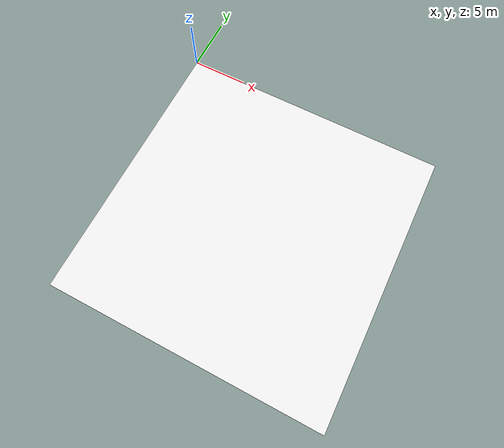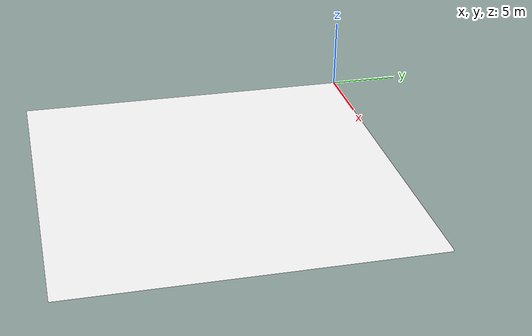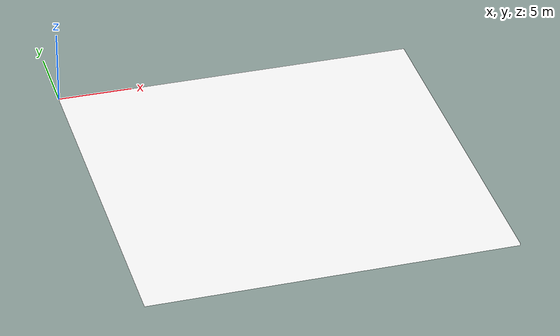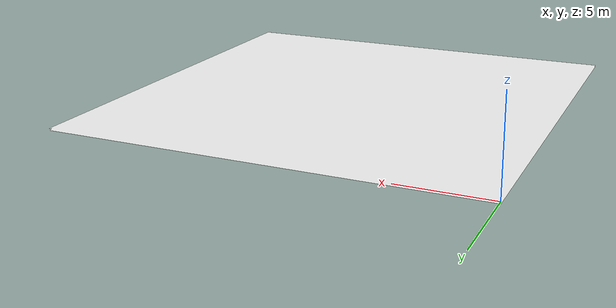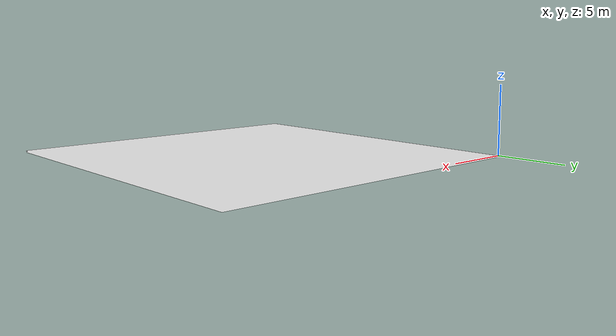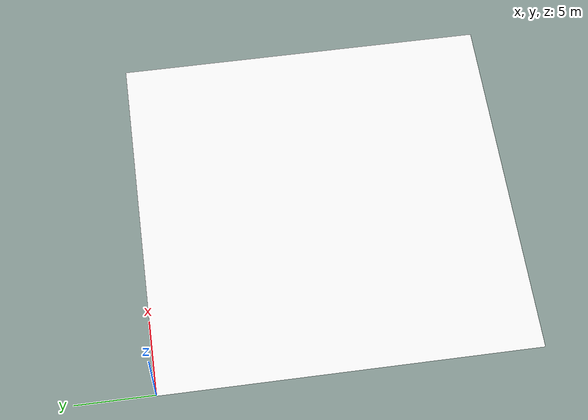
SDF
<?xml version='1.0' encoding='utf-8'?>
<sdf version="1.7">
  <model name="robotproj_L1">
    <static>true</static>
    <link name="floor_1">
      <visual name="visual">
        <geometry>
          <mesh>
            <uri>model://robotproj_L1/meshes/floor_1.obj</uri>
          </mesh>
        </geometry>
        <material>
          <diffuse>1.0 1.0 1.0</diffuse>
          <specular>0.1 0.1 0.1</specular>
          <pbr>
            <metal>
              <metalness>0.0</metalness>
              <albedo_map>model://robotproj_L1/meshes/blue_linoleum.png</albedo_map>
            </metal>
          </pbr>
          <script>
            <uri>model://robotproj_L1/meshes/</uri>
            <name>floor_1_Diffuse</name>
          </script>
        </material>
      </visual>
      <collision name="collision">
        <geometry>
          <mesh>
            <uri>model://robotproj_L1/meshes/floor_1.obj</uri>
          </mesh>
        </geometry>
        <surface>
          <contact>
            <collide_bitmask>0x01</collide_bitmask>
          </contact>
        </surface>
      </collision>
    </link>
  </model>
</sdf>
